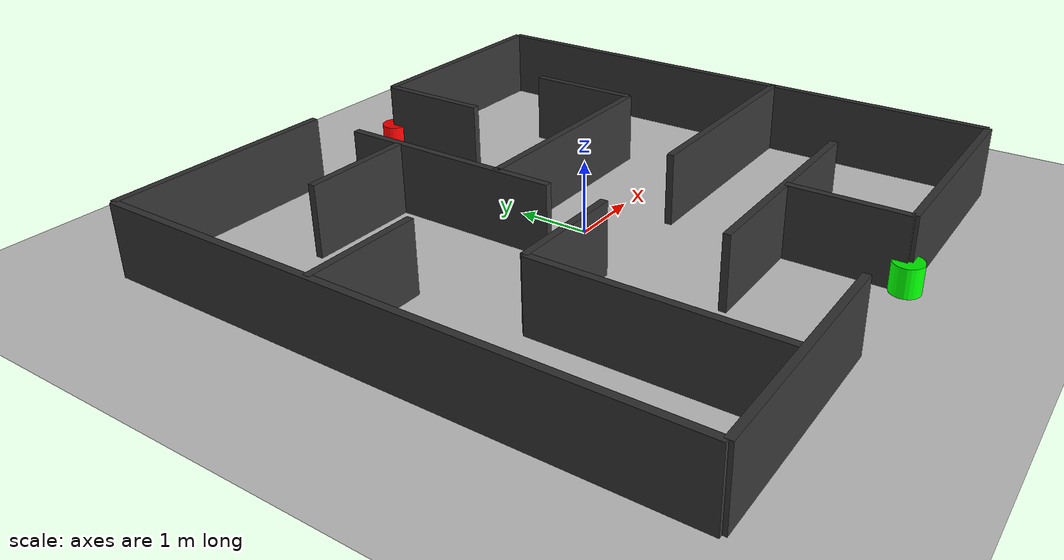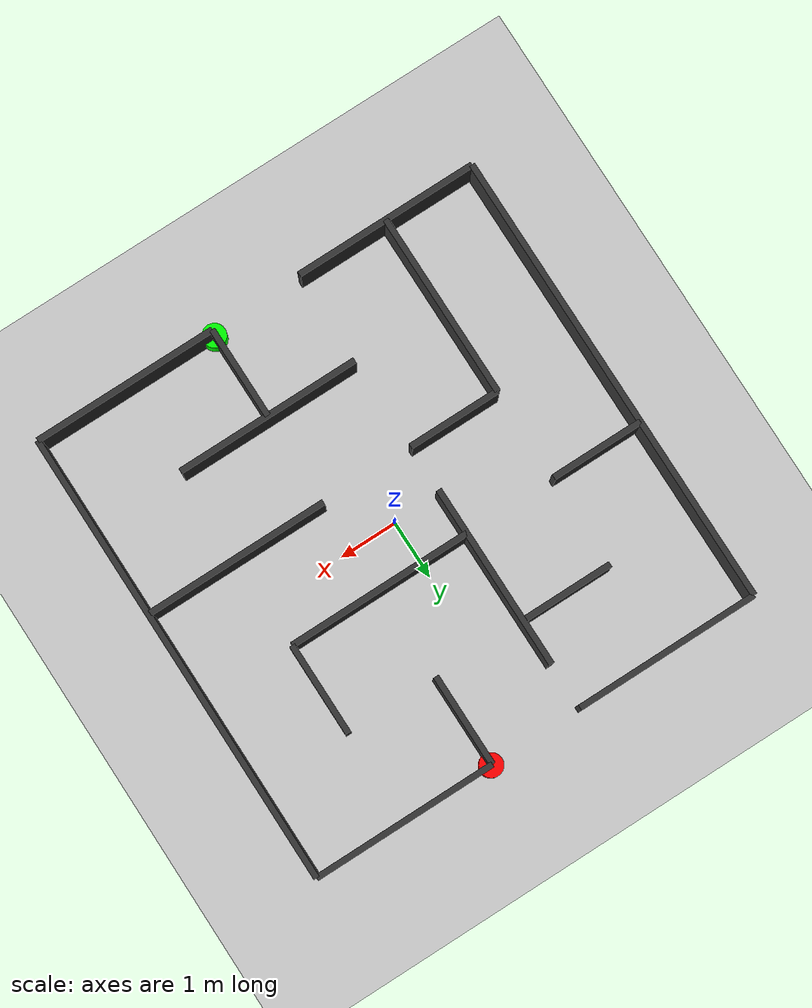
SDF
<?xml version="1.0" ?>
<sdf version="1.8">
    <world name="maze_world">
        <!-- Physics -->
        <physics name="1ms" type="ignored">
            <max_step_size>0.001</max_step_size>
            <real_time_factor>1.0</real_time_factor>
        </physics>

        <!-- Plugins -->
        <plugin filename="ignition-gazebo-physics-system" name="ignition::gazebo::systems::Physics">
        </plugin>
        <plugin filename="ignition-gazebo-user-commands-system" name="ignition::gazebo::systems::UserCommands">
        </plugin>
        <plugin filename="ignition-gazebo-scene-broadcaster-system" name="ignition::gazebo::systems::SceneBroadcaster">
        </plugin>
        <plugin filename="ignition-gazebo-sensors-system" name="ignition::gazebo::systems::Sensors">
            <render_engine>ogre</render_engine>
        </plugin>

        <!-- Lighting -->
        <light type="directional" name="sun">
            <cast_shadows>true</cast_shadows>
            <pose>0 0 10 0 0 0</pose>
            <diffuse>0.8 0.8 0.8 1</diffuse>
            <specular>0.2 0.2 0.2 1</specular>
            <attenuation>
                <range>1000</range>
                <constant>0.9</constant>
                <linear>0.01</linear>
                <quadratic>0.001</quadratic>
            </attenuation>
            <direction>-0.5 0.1 -0.9</direction>
        </light>

        <!-- Ground Plane -->
        <model name="ground_plane">
            <static>true</static>
            <link name="link">
                <collision name="collision">
                    <geometry>
                        <plane>
                            <normal>0 0 1</normal>
                        </plane>
                    </geometry>
                </collision>
                <visual name="visual">
                    <geometry>
                        <plane>
                            <normal>0 0 1</normal>
                            <size>20 20</size>
                        </plane>
                    </geometry>
                    <material>
                        <ambient>0.8 0.8 0.8 1</ambient>
                        <diffuse>0.8 0.8 0.8 1</diffuse>
                        <specular>0.8 0.8 0.8 1</specular>
                    </material>
                </visual>
            </link>
        </model>

        <!-- SVG koordinatlarını 3D'ye çeviriyoruz: 1 SVG birimi = 0.1m, Merkez (42,42) -> (0,0) -->
        <!-- Y ekseni ters çevrildi (SVG yukarıdan aşağı, Gazebo aşağıdan yukarı) -->

        <!-- Horizontal Walls (yatay çizgiler) -->
        <!-- Line: x1="2" y1="2" x2="34" y2="2" -->
        <model name="wall_h1">
            <static>true</static>
            <pose>-2.4 4 0.5 0 0 0</pose>
            <link name="link">
                <collision name="collision">
                    <geometry>
                        <box>
                            <size>3.2 0.1 1</size>
                        </box>
                    </geometry>
                </collision>
                <visual name="visual">
                    <geometry>
                        <box>
                            <size>3.2 0.1 1</size>
                        </box>
                    </geometry>
                    <material>
                        <ambient>0.2 0.2 0.2 1</ambient>
                        <diffuse>0.2 0.2 0.2 1</diffuse>
                    </material>
                </visual>
            </link>
        </model>

        <!-- Line: x1="50" y1="2" x2="82" y2="2" -->
        <model name="wall_h2">
            <static>true</static>
            <pose>2.4 4 0.5 0 0 0</pose>
            <link name="link">
                <collision name="collision">
                    <geometry>
                        <box>
                            <size>3.2 0.1 1</size>
                        </box>
                    </geometry>
                </collision>
                <visual name="visual">
                    <geometry>
                        <box>
                            <size>3.2 0.1 1</size>
                        </box>
                    </geometry>
                    <material>
                        <ambient>0.2 0.2 0.2 1</ambient>
                        <diffuse>0.2 0.2 0.2 1</diffuse>
                    </material>
                </visual>
            </link>
        </model>

        <!-- Line: x1="18" y1="18" x2="34" y2="18" -->
        <model name="wall_h3">
            <static>true</static>
            <pose>-1.6 2.4 0.5 0 0 0</pose>
            <link name="link">
                <collision name="collision">
                    <geometry>
                        <box>
                            <size>1.6 0.1 1</size>
                        </box>
                    </geometry>
                </collision>
                <visual name="visual">
                    <geometry>
                        <box>
                            <size>1.6 0.1 1</size>
                        </box>
                    </geometry>
                    <material>
                        <ambient>0.2 0.2 0.2 1</ambient>
                        <diffuse>0.2 0.2 0.2 1</diffuse>
                    </material>
                </visual>
            </link>
        </model>

        <!-- Line: x1="2" y1="34" x2="18" y2="34" -->
        <model name="wall_h4">
            <static>true</static>
            <pose>-3.2 0.8 0.5 0 0 0</pose>
            <link name="link">
                <collision name="collision">
                    <geometry>
                        <box>
                            <size>1.6 0.1 1</size>
                        </box>
                    </geometry>
                </collision>
                <visual name="visual">
                    <geometry>
                        <box>
                            <size>1.6 0.1 1</size>
                        </box>
                    </geometry>
                    <material>
                        <ambient>0.2 0.2 0.2 1</ambient>
                        <diffuse>0.2 0.2 0.2 1</diffuse>
                    </material>
                </visual>
            </link>
        </model>

        <!-- Line: x1="34" y1="34" x2="66" y2="34" -->
        <model name="wall_h5">
            <static>true</static>
            <pose>0.8 0.8 0.5 0 0 0</pose>
            <link name="link">
                <collision name="collision">
                    <geometry>
                        <box>
                            <size>3.2 0.1 1</size>
                        </box>
                    </geometry>
                </collision>
                <visual name="visual">
                    <geometry>
                        <box>
                            <size>3.2 0.1 1</size>
                        </box>
                    </geometry>
                    <material>
                        <ambient>0.2 0.2 0.2 1</ambient>
                        <diffuse>0.2 0.2 0.2 1</diffuse>
                    </material>
                </visual>
            </link>
        </model>

        <!-- Line: x1="18" y1="50" x2="34" y2="50" -->
        <model name="wall_h6">
            <static>true</static>
            <pose>-1.6 -0.8 0.5 0 0 0</pose>
            <link name="link">
                <collision name="collision">
                    <geometry>
                        <box>
                            <size>1.6 0.1 1</size>
                        </box>
                    </geometry>
                </collision>
                <visual name="visual">
                    <geometry>
                        <box>
                            <size>1.6 0.1 1</size>
                        </box>
                    </geometry>
                    <material>
                        <ambient>0.2 0.2 0.2 1</ambient>
                        <diffuse>0.2 0.2 0.2 1</diffuse>
                    </material>
                </visual>
            </link>
        </model>

        <!-- Line: x1="50" y1="50" x2="82" y2="50" -->
        <model name="wall_h7">
            <static>true</static>
            <pose>2.4 -0.8 0.5 0 0 0</pose>
            <link name="link">
                <collision name="collision">
                    <geometry>
                        <box>
                            <size>3.2 0.1 1</size>
                        </box>
                    </geometry>
                </collision>
                <visual name="visual">
                    <geometry>
                        <box>
                            <size>3.2 0.1 1</size>
                        </box>
                    </geometry>
                    <material>
                        <ambient>0.2 0.2 0.2 1</ambient>
                        <diffuse>0.2 0.2 0.2 1</diffuse>
                    </material>
                </visual>
            </link>
        </model>

        <!-- Line: x1="34" y1="66" x2="66" y2="66" -->
        <model name="wall_h8">
            <static>true</static>
            <pose>0.8 -2.4 0.5 0 0 0</pose>
            <link name="link">
                <collision name="collision">
                    <geometry>
                        <box>
                            <size>3.2 0.1 1</size>
                        </box>
                    </geometry>
                </collision>
                <visual name="visual">
                    <geometry>
                        <box>
                            <size>3.2 0.1 1</size>
                        </box>
                    </geometry>
                    <material>
                        <ambient>0.2 0.2 0.2 1</ambient>
                        <diffuse>0.2 0.2 0.2 1</diffuse>
                    </material>
                </visual>
            </link>
        </model>

        <!-- Line: x1="2" y1="82" x2="34" y2="82" -->
        <model name="wall_h9">
            <static>true</static>
            <pose>-2.4 -4 0.5 0 0 0</pose>
            <link name="link">
                <collision name="collision">
                    <geometry>
                        <box>
                            <size>3.2 0.1 1</size>
                        </box>
                    </geometry>
                </collision>
                <visual name="visual">
                    <geometry>
                        <box>
                            <size>3.2 0.1 1</size>
                        </box>
                    </geometry>
                    <material>
                        <ambient>0.2 0.2 0.2 1</ambient>
                        <diffuse>0.2 0.2 0.2 1</diffuse>
                    </material>
                </visual>
            </link>
        </model>

        <!-- Line: x1="50" y1="82" x2="82" y2="82" -->
        <model name="wall_h10">
            <static>true</static>
            <pose>2.4 -4 0.5 0 0 0</pose>
            <link name="link">
                <collision name="collision">
                    <geometry>
                        <box>
                            <size>3.2 0.1 1</size>
                        </box>
                    </geometry>
                </collision>
                <visual name="visual">
                    <geometry>
                        <box>
                            <size>3.2 0.1 1</size>
                        </box>
                    </geometry>
                    <material>
                        <ambient>0.2 0.2 0.2 1</ambient>
                        <diffuse>0.2 0.2 0.2 1</diffuse>
                    </material>
                </visual>
            </link>
        </model>

        <!-- Vertical Walls (dikey çizgiler) -->
        <!-- Line: x1="2" y1="2" x2="2" y2="82" -->
        <model name="wall_v1">
            <static>true</static>
            <pose>-4 0 0.5 0 0 0</pose>
            <link name="link">
                <collision name="collision">
                    <geometry>
                        <box>
                            <size>0.1 8 1</size>
                        </box>
                    </geometry>
                </collision>
                <visual name="visual">
                    <geometry>
                        <box>
                            <size>0.1 8 1</size>
                        </box>
                    </geometry>
                    <material>
                        <ambient>0.2 0.2 0.2 1</ambient>
                        <diffuse>0.2 0.2 0.2 1</diffuse>
                    </material>
                </visual>
            </link>
        </model>

        <!-- Line: x1="18" y1="50" x2="18" y2="82" -->
        <model name="wall_v2">
            <static>true</static>
            <pose>-2.4 -2.4 0.5 0 0 0</pose>
            <link name="link">
                <collision name="collision">
                    <geometry>
                        <box>
                            <size>0.1 3.2 1</size>
                        </box>
                    </geometry>
                </collision>
                <visual name="visual">
                    <geometry>
                        <box>
                            <size>0.1 3.2 1</size>
                        </box>
                    </geometry>
                    <material>
                        <ambient>0.2 0.2 0.2 1</ambient>
                        <diffuse>0.2 0.2 0.2 1</diffuse>
                    </material>
                </visual>
            </link>
        </model>

        <!-- Line: x1="34" y1="18" x2="34" y2="50" -->
        <model name="wall_v3">
            <static>true</static>
            <pose>-0.8 1.6 0.5 0 0 0</pose>
            <link name="link">
                <collision name="collision">
                    <geometry>
                        <box>
                            <size>0.1 3.2 1</size>
                        </box>
                    </geometry>
                </collision>
                <visual name="visual">
                    <geometry>
                        <box>
                            <size>0.1 3.2 1</size>
                        </box>
                    </geometry>
                    <material>
                        <ambient>0.2 0.2 0.2 1</ambient>
                        <diffuse>0.2 0.2 0.2 1</diffuse>
                    </material>
                </visual>
            </link>
        </model>

        <!-- Line: x1="50" y1="2" x2="50" y2="18" -->
        <model name="wall_v4">
            <static>true</static>
            <pose>0.8 3.2 0.5 0 0 0</pose>
            <link name="link">
                <collision name="collision">
                    <geometry>
                        <box>
                            <size>0.1 1.6 1</size>
                        </box>
                    </geometry>
                </collision>
                <visual name="visual">
                    <geometry>
                        <box>
                            <size>0.1 1.6 1</size>
                        </box>
                    </geometry>
                    <material>
                        <ambient>0.2 0.2 0.2 1</ambient>
                        <diffuse>0.2 0.2 0.2 1</diffuse>
                    </material>
                </visual>
            </link>
        </model>

        <!-- Line: x1="50" y1="66" x2="50" y2="82" -->
        <model name="wall_v5">
            <static>true</static>
            <pose>0.8 -3.2 0.5 0 0 0</pose>
            <link name="link">
                <collision name="collision">
                    <geometry>
                        <box>
                            <size>0.1 1.6 1</size>
                        </box>
                    </geometry>
                </collision>
                <visual name="visual">
                    <geometry>
                        <box>
                            <size>0.1 1.6 1</size>
                        </box>
                    </geometry>
                    <material>
                        <ambient>0.2 0.2 0.2 1</ambient>
                        <diffuse>0.2 0.2 0.2 1</diffuse>
                    </material>
                </visual>
            </link>
        </model>

        <!-- Line: x1="66" y1="18" x2="66" y2="34" -->
        <model name="wall_v6">
            <static>true</static>
            <pose>2.4 1.6 0.5 0 0 0</pose>
            <link name="link">
                <collision name="collision">
                    <geometry>
                        <box>
                            <size>0.1 1.6 1</size>
                        </box>
                    </geometry>
                </collision>
                <visual name="visual">
                    <geometry>
                        <box>
                            <size>0.1 1.6 1</size>
                        </box>
                    </geometry>
                    <material>
                        <ambient>0.2 0.2 0.2 1</ambient>
                        <diffuse>0.2 0.2 0.2 1</diffuse>
                    </material>
                </visual>
            </link>
        </model>

        <!-- Line: x1="82" y1="2" x2="82" y2="82" -->
        <model name="wall_v7">
            <static>true</static>
            <pose>4 0 0.5 0 0 0</pose>
            <link name="link">
                <collision name="collision">
                    <geometry>
                        <box>
                            <size>0.1 8 1</size>
                        </box>
                    </geometry>
                </collision>
                <visual name="visual">
                    <geometry>
                        <box>
                            <size>0.1 8 1</size>
                        </box>
                    </geometry>
                    <material>
                        <ambient>0.2 0.2 0.2 1</ambient>
                        <diffuse>0.2 0.2 0.2 1</diffuse>
                    </material>
                </visual>
            </link>
        </model>

        <!-- Start Marker (Red) - sol üst açıklıkta -->
        <model name="start_marker">
            <static>true</static>
            <pose>0.8 4 0.2 0 0 0</pose>
            <link name="link">
                <visual name="visual">
                    <geometry>
                        <cylinder>
                            <radius>0.2</radius>
                            <length>0.4</length>
                        </cylinder>
                    </geometry>
                    <material>
                        <ambient>1 0 0 1</ambient>
                        <diffuse>1 0 0 1</diffuse>
                        <emissive>0.8 0 0 1</emissive>
                    </material>
                </visual>
            </link>
        </model>

        <!-- Finish Marker (Green) - sağ alt açıklıkta -->
        <model name="finish_marker">
            <static>true</static>
            <pose>0.8 -4 0.2 0 0 0</pose>
            <link name="link">
                <visual name="visual">
                    <geometry>
                        <cylinder>
                            <radius>0.2</radius>
                            <length>0.4</length>
                        </cylinder>
                    </geometry>
                    <material>
                        <ambient>0 1 0 1</ambient>
                        <diffuse>0 1 0 1</diffuse>
                        <emissive>0 0.8 0 1</emissive>
                    </material>
                </visual>
            </link>
        </model>

    </world>
</sdf>
